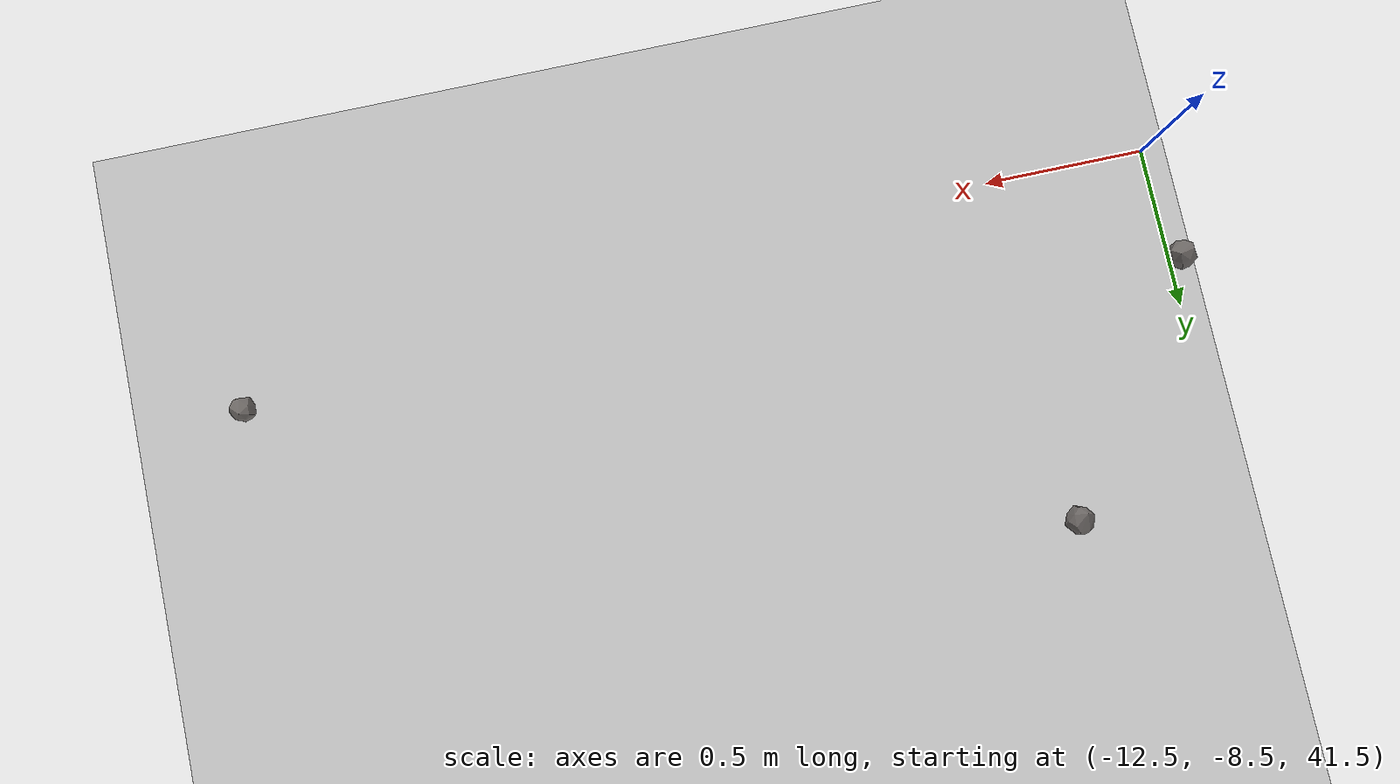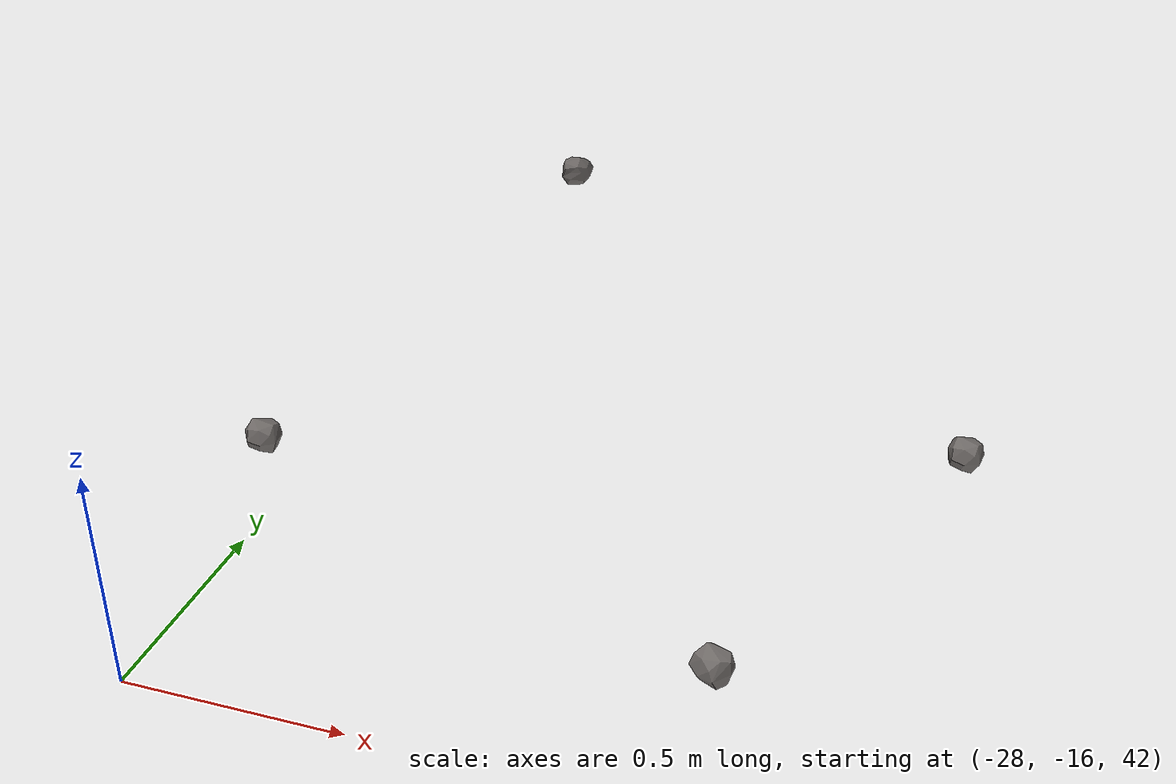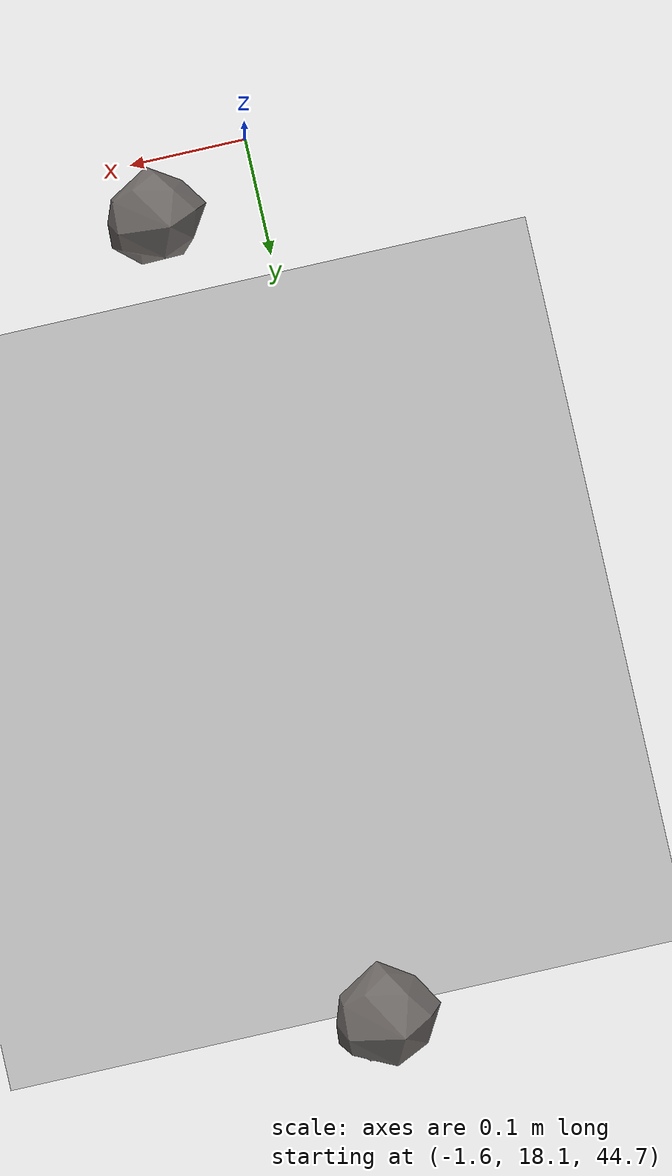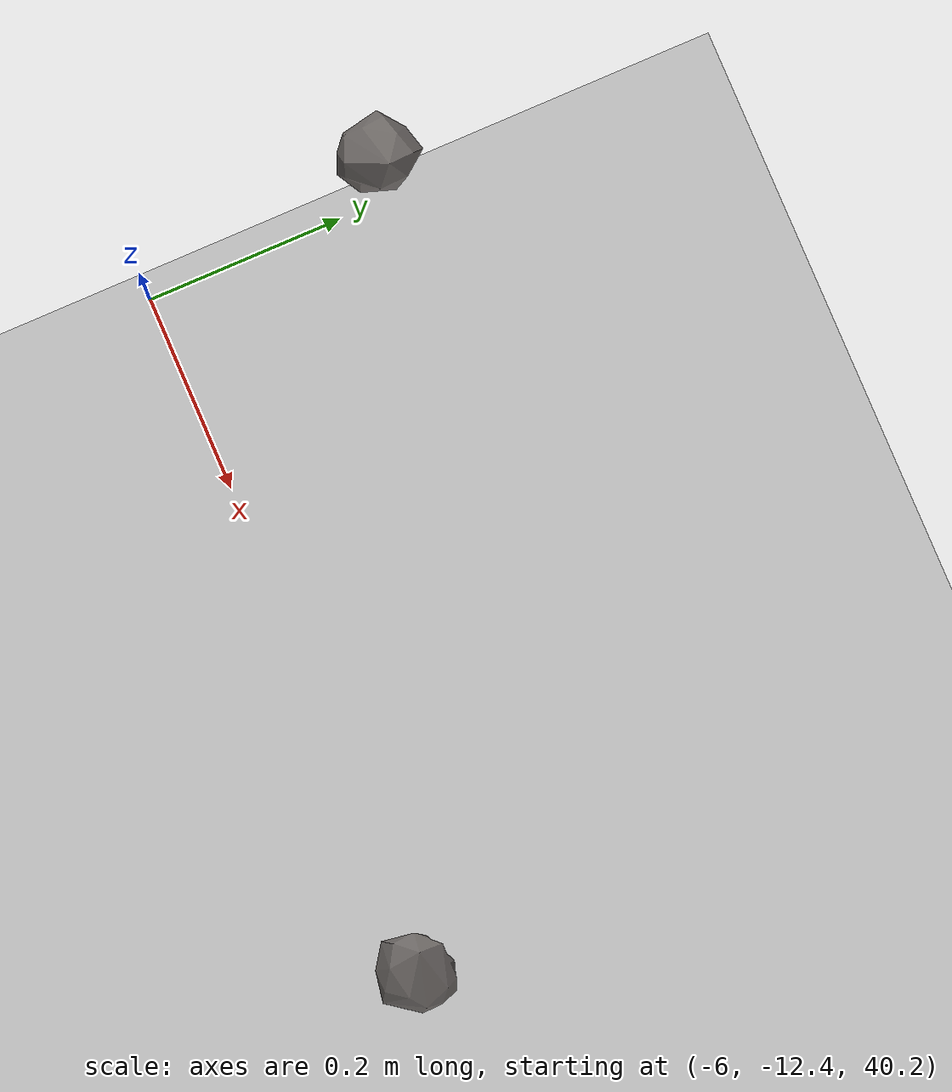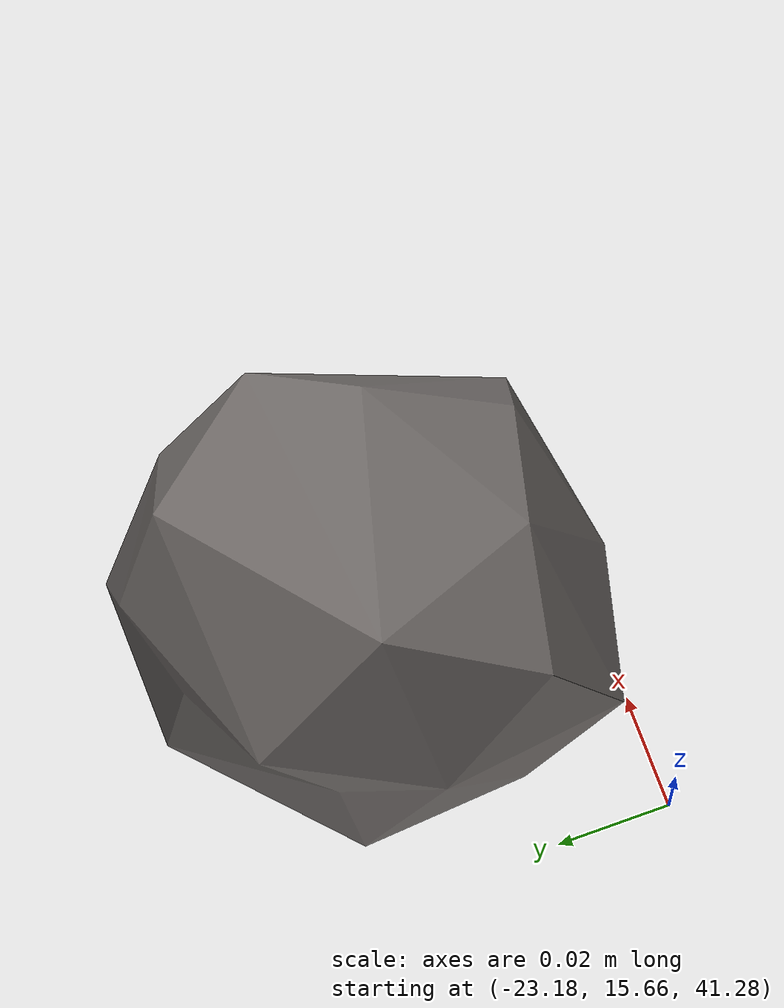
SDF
<sdf version="1.8">
 <world name="terrain_test">
  <scene><ambient>0.35 0.38 0.45 1</ambient><background>0.35 0.55 0.85 1</background></scene>
  <physics name="1ms" type="ignored">
   <max_step_size>0.004</max_step_size>
   <real_time_factor>1.0</real_time_factor>
  </physics>
  <gravity>0 0 -9.8</gravity>
  <plugin filename="gz-sim-physics-system" name="gz::sim::systems::Physics"/>
  <plugin filename="gz-sim-user-commands-system" name="gz::sim::systems::UserCommands"/>
  <plugin filename="gz-sim-scene-broadcaster-system" name="gz::sim::systems::SceneBroadcaster"/>
  <plugin filename="gz-sim-sensors-system" name="gz::sim::systems::Sensors">
   <render_engine>ogre2</render_engine>
  </plugin>
  <plugin filename="gz-sim-imu-system" name="gz::sim::systems::Imu"/>
  <light name="sun" type="directional">
   <pose>0 0 10 0 0 0</pose>
   <diffuse>1.0 1.0 1.0 1</diffuse>
   <specular>0.5 0.5 0.5 1</specular>
   <direction>-0.5 0.1 -0.9</direction>
  </light>
  <include><name>terrain</name><uri>model://ground</uri></include>
  <include>
   <name>small_rock_fall_151</name>
   <uri>model://Small Rock Fall</uri>
   <pose>10.51 -5.04 40.89 0 0 5.463</pose>
  </include>
  <include>
   <name>small_rock_fall_152</name>
   <uri>model://Small Rock Fall</uri>
   <pose>-17.37 -15.04 41.24 0 0 1.728</pose>
  </include>
  <include>
   <name>small_rock_fall_153</name>
   <uri>model://Small Rock Fall</uri>
   <pose>-11.84 -19.47 39.47 0 0 4.157</pose>
  </include>
  <include>
   <name>small_rock_fall_154</name>
   <uri>model://Small Rock Fall</uri>
   <pose>-21.26 -28.88 39.41 0 0 1.669</pose>
  </include>
  <include>
   <name>small_rock_fall_155</name>
   <uri>model://Small Rock Fall</uri>
   <pose>-35.81 9.96 38.32 0 0 4.931</pose>
  </include>
  <include>
   <name>small_rock_fall_156</name>
   <uri>model://Small Rock Fall</uri>
   <pose>-16.00 -10.46 42.08 0 0 3.962</pose>
  </include>
  <include>
   <name>small_rock_fall_157</name>
   <uri>model://Small Rock Fall</uri>
   <pose>-43.27 -8.62 39.92 0 0 0.311</pose>
  </include>
  <include>
   <name>small_rock_fall_158</name>
   <uri>model://Small Rock Fall</uri>
   <pose>-38.06 -19.59 41.29 0 0 0.870</pose>
  </include>
  <include>
   <name>small_rock_fall_159</name>
   <uri>model://Small Rock Fall</uri>
   <pose>-5.47 23.70 45.15 0 0 5.820</pose>
  </include>
  <include>
   <name>small_rock_fall_160</name>
   <uri>model://Small Rock Fall</uri>
   <pose>14.11 -19.18 39.92 0 0 1.769</pose>
  </include>
  <include>
   <name>small_rock_fall_161</name>
   <uri>model://Small Rock Fall</uri>
   <pose>0.60 -33.16 38.04 0 0 1.634</pose>
  </include>
  <include>
   <name>small_rock_fall_162</name>
   <uri>model://Small Rock Fall</uri>
   <pose>-26.79 -15.88 42.27 0 0 4.201</pose>
  </include>
  <include>
   <name>small_rock_fall_163</name>
   <uri>model://Small Rock Fall</uri>
   <pose>-8.62 -17.71 39.57 0 0 1.305</pose>
  </include>
  <include>
   <name>small_rock_fall_164</name>
   <uri>model://Small Rock Fall</uri>
   <pose>-11.17 21.04 44.40 0 0 5.691</pose>
  </include>
  <include>
   <name>small_rock_fall_165</name>
   <uri>model://Small Rock Fall</uri>
   <pose>-9.52 22.44 44.79 0 0 1.208</pose>
  </include>
  <include>
   <name>small_rock_fall_166</name>
   <uri>model://Small Rock Fall</uri>
   <pose>-6.05 -12.14 40.16 0 0 2.005</pose>
  </include>
  <include>
   <name>small_rock_fall_167</name>
   <uri>model://Small Rock Fall</uri>
   <pose>1.68 3.07 42.22 0 0 5.572</pose>
  </include>
  <include>
   <name>small_rock_fall_168</name>
   <uri>model://Small Rock Fall</uri>
   <pose>-21.45 -32.62 38.95 0 0 4.684</pose>
  </include>
  <include>
   <name>small_rock_fall_169</name>
   <uri>model://Small Rock Fall</uri>
   <pose>3.81 -21.65 38.93 0 0 0.390</pose>
  </include>
  <include>
   <name>small_rock_fall_170</name>
   <uri>model://Small Rock Fall</uri>
   <pose>-5.30 -12.42 40.16 0 0 4.313</pose>
  </include>
  <include>
   <name>small_rock_fall_171</name>
   <uri>model://Small Rock Fall</uri>
   <pose>-41.91 -17.30 40.83 0 0 1.356</pose>
  </include>
  <include>
   <name>small_rock_fall_172</name>
   <uri>model://Small Rock Fall</uri>
   <pose>9.36 -13.95 40.05 0 0 4.056</pose>
  </include>
  <include>
   <name>small_rock_fall_173</name>
   <uri>model://Small Rock Fall</uri>
   <pose>-11.52 -4.52 42.30 0 0 5.482</pose>
  </include>
  <include>
   <name>small_rock_fall_174</name>
   <uri>model://Small Rock Fall</uri>
   <pose>-4.67 -15.55 39.49 0 0 4.796</pose>
  </include>
  <include>
   <name>small_rock_fall_175</name>
   <uri>model://Small Rock Fall</uri>
   <pose>-16.63 22.92 43.14 0 0 0.001</pose>
  </include>
  <include>
   <name>small_rock_fall_176</name>
   <uri>model://Small Rock Fall</uri>
   <pose>-9.59 -8.29 41.48 0 0 3.315</pose>
  </include>
  <include>
   <name>small_rock_fall_177</name>
   <uri>model://Small Rock Fall</uri>
   <pose>-21.59 -0.70 43.01 0 0 0.685</pose>
  </include>
  <include>
   <name>small_rock_fall_178</name>
   <uri>model://Small Rock Fall</uri>
   <pose>23.54 -7.72 40.70 0 0 0.684</pose>
  </include>
  <include>
   <name>small_rock_fall_179</name>
   <uri>model://Small Rock Fall</uri>
   <pose>-7.13 8.13 43.90 0 0 4.803</pose>
  </include>
  <include>
   <name>small_rock_fall_180</name>
   <uri>model://Small Rock Fall</uri>
   <pose>-14.87 8.41 43.78 0 0 0.009</pose>
  </include>
  <include>
   <name>small_rock_fall_181</name>
   <uri>model://Small Rock Fall</uri>
   <pose>11.87 -7.26 40.67 0 0 4.054</pose>
  </include>
  <include>
   <name>small_rock_fall_182</name>
   <uri>model://Small Rock Fall</uri>
   <pose>14.58 -11.55 40.55 0 0 3.317</pose>
  </include>
  <include>
   <name>small_rock_fall_183</name>
   <uri>model://Small Rock Fall</uri>
   <pose>-29.68 -3.69 42.06 0 0 0.442</pose>
  </include>
  <include>
   <name>small_rock_fall_184</name>
   <uri>model://Small Rock Fall</uri>
   <pose>-24.09 -6.29 42.70 0 0 1.638</pose>
  </include>
  <include>
   <name>small_rock_fall_185</name>
   <uri>model://Small Rock Fall</uri>
   <pose>-5.88 20.14 44.95 0 0 1.894</pose>
  </include>
  <include>
   <name>small_rock_fall_186</name>
   <uri>model://Small Rock Fall</uri>
   <pose>-29.69 8.20 40.38 0 0 5.272</pose>
  </include>
  <include>
   <name>small_rock_fall_187</name>
   <uri>model://Small Rock Fall</uri>
   <pose>3.16 -26.35 38.62 0 0 1.552</pose>
  </include>
  <include>
   <name>small_rock_fall_188</name>
   <uri>model://Small Rock Fall</uri>
   <pose>-30.46 -6.93 42.04 0 0 0.137</pose>
  </include>
  <include>
   <name>small_rock_fall_189</name>
   <uri>model://Small Rock Fall</uri>
   <pose>-18.55 -8.12 42.64 0 0 0.509</pose>
  </include>
  <include>
   <name>small_rock_fall_190</name>
   <uri>model://Small Rock Fall</uri>
   <pose>-0.51 -45.16 37.21 0 0 1.424</pose>
  </include>
  <include>
   <name>small_rock_fall_191</name>
   <uri>model://Small Rock Fall</uri>
   <pose>-16.06 -35.85 37.54 0 0 2.275</pose>
  </include>
  <include>
   <name>small_rock_fall_192</name>
   <uri>model://Small Rock Fall</uri>
   <pose>-23.14 15.70 41.33 0 0 4.642</pose>
  </include>
  <include>
   <name>small_rock_fall_193</name>
   <uri>model://Small Rock Fall</uri>
   <pose>-20.00 0.08 43.13 0 0 1.259</pose>
  </include>
  <include>
   <name>small_rock_fall_194</name>
   <uri>model://Small Rock Fall</uri>
   <pose>-2.05 15.02 44.48 0 0 1.391</pose>
  </include>
  <include>
   <name>small_rock_fall_195</name>
   <uri>model://Small Rock Fall</uri>
   <pose>-1.51 18.15 44.72 0 0 3.916</pose>
  </include>
  <include>
   <name>small_rock_fall_196</name>
   <uri>model://Small Rock Fall</uri>
   <pose>-27.14 1.66 41.88 0 0 2.619</pose>
  </include>
  <include>
   <name>small_rock_fall_197</name>
   <uri>model://Small Rock Fall</uri>
   <pose>-16.18 -22.00 39.84 0 0 5.790</pose>
  </include>
  <include>
   <name>small_rock_fall_198</name>
   <uri>model://Small Rock Fall</uri>
   <pose>-5.66 1.33 42.77 0 0 0.891</pose>
  </include>
  <include>
   <name>small_rock_fall_199</name>
   <uri>model://Small Rock Fall</uri>
   <pose>-12.71 -27.91 38.46 0 0 2.824</pose>
  </include>
  <include>
   <name>small_rock_fall_200</name>
   <uri>model://Small Rock Fall</uri>
   <pose>-16.65 -35.96 37.54 0 0 6.264</pose>
  </include>
  <include>
   <name>small_rock_fall_201</name>
   <uri>model://Small Rock Fall</uri>
   <pose>6.91 -22.30 39.19 0 0 5.877</pose>
  </include>
  <include>
   <name>small_rock_fall_202</name>
   <uri>model://Small Rock Fall</uri>
   <pose>-35.15 -24.62 41.59 0 0 4.555</pose>
  </include>
  <include>
   <name>small_rock_fall_203</name>
   <uri>model://Small Rock Fall</uri>
   <pose>-10.50 26.67 44.37 0 0 1.063</pose>
  </include>
  <include>
   <name>small_rock_fall_204</name>
   <uri>model://Small Rock Fall</uri>
   <pose>-8.02 -20.60 39.13 0 0 2.639</pose>
  </include>
  <include>
   <name>small_rock_fall_205</name>
   <uri>model://Small Rock Fall</uri>
   <pose>-25.35 -28.03 40.82 0 0 2.387</pose>
  </include>
  <include>
   <name>small_rock_fall_206</name>
   <uri>model://Small Rock Fall</uri>
   <pose>2.44 5.86 42.67 0 0 2.716</pose>
  </include>
  <include>
   <name>small_rock_fall_207</name>
   <uri>model://Small Rock Fall</uri>
   <pose>-12.92 -28.05 38.46 0 0 3.401</pose>
  </include>
  <include>
   <name>small_rock_fall_208</name>
   <uri>model://Small Rock Fall</uri>
   <pose>-25.29 8.50 41.52 0 0 5.633</pose>
  </include>
  <include>
   <name>small_rock_fall_209</name>
   <uri>model://Small Rock Fall</uri>
   <pose>-15.87 -27.35 38.87 0 0 3.928</pose>
  </include>
  <include>
   <name>small_rock_fall_210</name>
   <uri>model://Small Rock Fall</uri>
   <pose>-25.97 1.08 42.30 0 0 0.393</pose>
  </include>
  <include>
   <name>small_rock_fall_211</name>
   <uri>model://Small Rock Fall</uri>
   <pose>-11.93 -7.43 41.85 0 0 5.643</pose>
  </include>
  <include>
   <name>small_rock_fall_212</name>
   <uri>model://Small Rock Fall</uri>
   <pose>-3.00 -2.43 41.79 0 0 5.990</pose>
  </include>
  <include>
   <name>small_rock_fall_213</name>
   <uri>model://Small Rock Fall</uri>
   <pose>-12.37 -8.09 41.91 0 0 1.988</pose>
  </include>
  <include>
   <name>small_rock_fall_214</name>
   <uri>model://Small Rock Fall</uri>
   <pose>-1.93 5.16 42.98 0 0 3.740</pose>
  </include>
  <include>
   <name>small_rock_fall_215</name>
   <uri>model://Small Rock Fall</uri>
   <pose>-19.19 4.84 43.30 0 0 0.152</pose>
  </include>
  <include>
   <name>small_rock_fall_216</name>
   <uri>model://Small Rock Fall</uri>
   <pose>20.81 -18.46 39.91 0 0 2.925</pose>
  </include>
  <include>
   <name>small_rock_fall_217</name>
   <uri>model://Small Rock Fall</uri>
   <pose>-10.01 25.40 44.61 0 0 2.700</pose>
  </include>
  <include>
   <name>small_rock_fall_218</name>
   <uri>model://Small Rock Fall</uri>
   <pose>-21.20 8.28 42.75 0 0 0.055</pose>
  </include>
  <include>
   <name>small_rock_fall_219</name>
   <uri>model://Small Rock Fall</uri>
   <pose>-32.07 -13.15 42.19 0 0 0.950</pose>
  </include>
  <include>
   <name>small_rock_fall_220</name>
   <uri>model://Small Rock Fall</uri>
   <pose>5.95 -20.39 39.35 0 0 2.272</pose>
  </include>
  <include>
   <name>small_rock_fall_221</name>
   <uri>model://Small Rock Fall</uri>
   <pose>-13.72 14.82 44.00 0 0 2.460</pose>
  </include>
  <include>
   <name>small_rock_fall_222</name>
   <uri>model://Small Rock Fall</uri>
   <pose>9.72 -24.07 39.42 0 0 0.213</pose>
  </include>
  <include>
   <name>small_rock_fall_223</name>
   <uri>model://Small Rock Fall</uri>
   <pose>-34.72 -5.72 41.25 0 0 2.679</pose>
  </include>
  <include>
   <name>small_rock_fall_224</name>
   <uri>model://Small Rock Fall</uri>
   <pose>-4.23 -22.89 38.47 0 0 0.528</pose>
  </include>
  <include>
   <name>small_rock_fall_225</name>
   <uri>model://Small Rock Fall</uri>
   <pose>-34.91 -9.55 41.59 0 0 6.105</pose>
  </include>
  <include>
   <name>small_rock_fall_226</name>
   <uri>model://Small Rock Fall</uri>
   <pose>10.59 -18.06 39.95 0 0 3.896</pose>
  </include>
  <include>
   <name>small_rock_fall_227</name>
   <uri>model://Small Rock Fall</uri>
   <pose>-26.47 -15.05 42.27 0 0 4.860</pose>
  </include>
  <include>
   <name>small_rock_fall_228</name>
   <uri>model://Small Rock Fall</uri>
   <pose>7.66 32.82 45.35 0 0 1.845</pose>
  </include>
  <include>
   <name>small_rock_fall_229</name>
   <uri>model://Small Rock Fall</uri>
   <pose>-30.36 2.60 40.96 0 0 1.635</pose>
  </include>
  <include>
   <name>small_rock_fall_230</name>
   <uri>model://Small Rock Fall</uri>
   <pose>-28.18 7.23 40.83 0 0 0.963</pose>
  </include>
  <include>
   <name>small_rock_fall_231</name>
   <uri>model://Small Rock Fall</uri>
   <pose>-28.35 -1.20 42.07 0 0 1.580</pose>
  </include>
  <include>
   <name>small_rock_fall_232</name>
   <uri>model://Small Rock Fall</uri>
   <pose>3.14 -27.66 38.61 0 0 5.077</pose>
  </include>
  <include>
   <name>small_rock_fall_233</name>
   <uri>model://Small Rock Fall</uri>
   <pose>-29.94 -25.64 41.48 0 0 0.028</pose>
  </include>
  <include>
   <name>small_rock_fall_234</name>
   <uri>model://Small Rock Fall</uri>
   <pose>-3.67 30.67 45.63 0 0 2.348</pose>
  </include>
  <include>
   <name>small_rock_fall_235</name>
   <uri>model://Small Rock Fall</uri>
   <pose>2.61 -5.72 40.68 0 0 3.771</pose>
  </include>
  <include>
   <name>small_rock_fall_236</name>
   <uri>model://Small Rock Fall</uri>
   <pose>-22.82 10.55 41.89 0 0 2.338</pose>
  </include>
  <include>
   <name>small_rock_fall_237</name>
   <uri>model://Small Rock Fall</uri>
   <pose>0.53 31.91 45.97 0 0 4.867</pose>
  </include>
  <include>
   <name>small_rock_fall_238</name>
   <uri>model://Small Rock Fall</uri>
   <pose>-23.52 -27.62 40.37 0 0 3.744</pose>
  </include>
  <include>
   <name>small_rock_fall_239</name>
   <uri>model://Small Rock Fall</uri>
   <pose>-31.06 -2.23 41.62 0 0 2.135</pose>
  </include>
  <include>
   <name>small_rock_fall_240</name>
   <uri>model://Small Rock Fall</uri>
   <pose>-9.31 -15.73 40.03 0 0 3.764</pose>
  </include>
  <include>
   <name>small_rock_fall_241</name>
   <uri>model://Small Rock Fall</uri>
   <pose>-13.36 -34.70 37.23 0 0 5.142</pose>
  </include>
  <include>
   <name>small_rock_fall_242</name>
   <uri>model://Small Rock Fall</uri>
   <pose>-30.80 -4.71 41.86 0 0 1.961</pose>
  </include>
  <include>
   <name>small_rock_fall_243</name>
   <uri>model://Small Rock Fall</uri>
   <pose>19.98 -25.30 39.19 0 0 3.036</pose>
  </include>
  <include>
   <name>small_rock_fall_244</name>
   <uri>model://Small Rock Fall</uri>
   <pose>-21.03 5.85 42.89 0 0 3.455</pose>
  </include>
  <include>
   <name>small_rock_fall_245</name>
   <uri>model://Small Rock Fall</uri>
   <pose>-40.33 -28.97 40.69 0 0 2.498</pose>
  </include>
  <include>
   <name>small_rock_fall_246</name>
   <uri>model://Small Rock Fall</uri>
   <pose>-3.90 -4.65 41.29 0 0 1.932</pose>
  </include>
  <include>
   <name>small_rock_fall_247</name>
   <uri>model://Small Rock Fall</uri>
   <pose>-15.72 -11.59 41.68 0 0 2.243</pose>
  </include>
  <include>
   <name>small_rock_fall_248</name>
   <uri>model://Small Rock Fall</uri>
   <pose>-13.03 2.23 43.53 0 0 5.038</pose>
  </include>
  <include>
   <name>small_rock_fall_249</name>
   <uri>model://Small Rock Fall</uri>
   <pose>-22.80 -12.46 42.38 0 0 1.279</pose>
  </include>
  <include>
   <name>small_rock_fall_250</name>
   <uri>model://Small Rock Fall</uri>
   <pose>-16.08 -20.23 40.32 0 0 0.713</pose>
  </include>
  <include>
   <name>small_rock_fall_251</name>
   <uri>model://Small Rock Fall</uri>
   <pose>-26.77 -11.99 42.43 0 0 2.894</pose>
  </include>
  <include>
   <name>small_rock_fall_252</name>
   <uri>model://Small Rock Fall</uri>
   <pose>11.67 -25.23 39.48 0 0 0.895</pose>
  </include>
  <include>
   <name>small_rock_fall_253</name>
   <uri>model://Small Rock Fall</uri>
   <pose>-1.55 18.83 44.87 0 0 3.907</pose>
  </include>
  <include>
   <name>small_rock_fall_254</name>
   <uri>model://Small Rock Fall</uri>
   <pose>1.85 -14.10 39.40 0 0 2.185</pose>
  </include>
  <include>
   <name>small_rock_fall_255</name>
   <uri>model://Small Rock Fall</uri>
   <pose>-10.67 -30.08 37.75 0 0 0.683</pose>
  </include>
  <include>
   <name>small_rock_fall_256</name>
   <uri>model://Small Rock Fall</uri>
   <pose>-27.93 -15.47 42.28 0 0 5.054</pose>
  </include>
  <include>
   <name>small_rock_fall_257</name>
   <uri>model://Small Rock Fall</uri>
   <pose>17.37 6.80 42.08 0 0 6.126</pose>
  </include>
  <include>
   <name>small_rock_fall_258</name>
   <uri>model://Small Rock Fall</uri>
   <pose>-33.14 11.79 38.56 0 0 3.996</pose>
  </include>
  <include>
   <name>small_rock_fall_259</name>
   <uri>model://Small Rock Fall</uri>
   <pose>-0.95 -29.44 37.90 0 0 5.178</pose>
  </include>
  <include>
   <name>small_rock_fall_260</name>
   <uri>model://Small Rock Fall</uri>
   <pose>-1.62 -41.05 37.37 0 0 3.900</pose>
  </include>
  <include>
   <name>small_rock_fall_261</name>
   <uri>model://Small Rock Fall</uri>
   <pose>-19.97 -18.16 41.29 0 0 1.149</pose>
  </include>
  <include>
   <name>small_rock_fall_262</name>
   <uri>model://Small Rock Fall</uri>
   <pose>30.19 -21.86 37.91 0 0 0.983</pose>
  </include>
  <include>
   <name>small_rock_fall_263</name>
   <uri>model://Small Rock Fall</uri>
   <pose>7.15 -3.86 40.90 0 0 4.552</pose>
  </include>
  <include>
   <name>small_rock_fall_264</name>
   <uri>model://Small Rock Fall</uri>
   <pose>20.85 -24.41 39.12 0 0 4.757</pose>
  </include>
  <include>
   <name>small_rock_fall_265</name>
   <uri>model://Small Rock Fall</uri>
   <pose>-15.21 -29.28 38.32 0 0 2.448</pose>
  </include>
  <include>
   <name>small_rock_fall_266</name>
   <uri>model://Small Rock Fall</uri>
   <pose>-40.31 -3.43 39.86 0 0 1.923</pose>
  </include>
  <include>
   <name>small_rock_fall_267</name>
   <uri>model://Small Rock Fall</uri>
   <pose>-30.73 6.84 40.13 0 0 2.444</pose>
  </include>
  <include>
   <name>small_rock_fall_268</name>
   <uri>model://Small Rock Fall</uri>
   <pose>-6.84 -5.42 41.62 0 0 0.147</pose>
  </include>
  <include>
   <name>small_rock_fall_269</name>
   <uri>model://Small Rock Fall</uri>
   <pose>-19.57 -5.12 42.89 0 0 2.806</pose>
  </include>
  <include>
   <name>small_rock_fall_270</name>
   <uri>model://Small Rock Fall</uri>
   <pose>-27.73 -14.04 42.31 0 0 1.128</pose>
  </include>
 </world>
</sdf>

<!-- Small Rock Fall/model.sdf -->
<sdf version="1.6">
  <model name="small_rock_fall">
    <static>true</static>
    <link name="base_link">
      <collision name="collision">
        <geometry>
          <mesh>
            <uri>meshes/FallingRock06.dae</uri>
            <scale>0.75 0.75 0.75</scale>
          </mesh>
        </geometry>
      </collision>
      <visual name="visual">
        <geometry>
          <mesh>
            <uri>meshes/FallingRock06.dae</uri>
            <scale>0.75 0.75 0.75</scale>
          </mesh>
        </geometry>
        <material>
          <ambient>0.36 0.34 0.33 1.0</ambient>
          <diffuse>0.43 0.41 0.40 1.0</diffuse>
          <specular>0.07 0.07 0.07 1.0</specular>
        </material>
      </visual>
    </link>
  </model>
</sdf>
